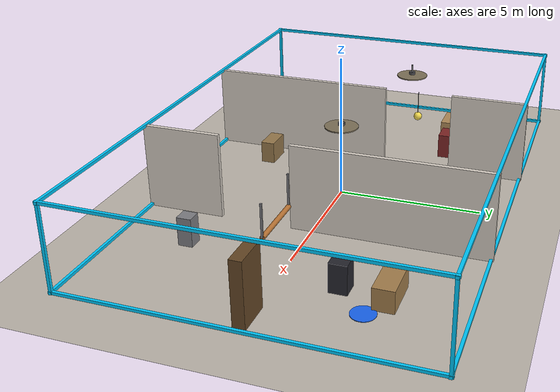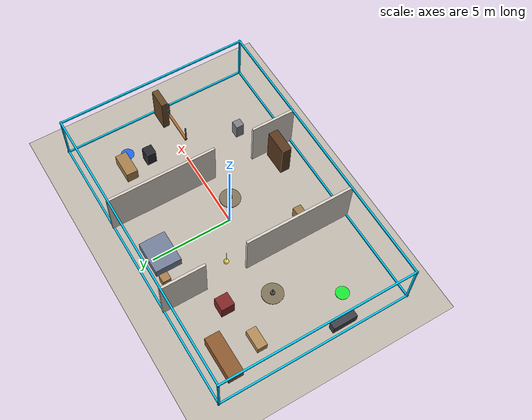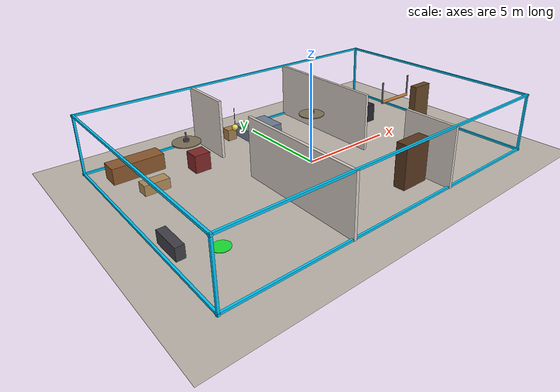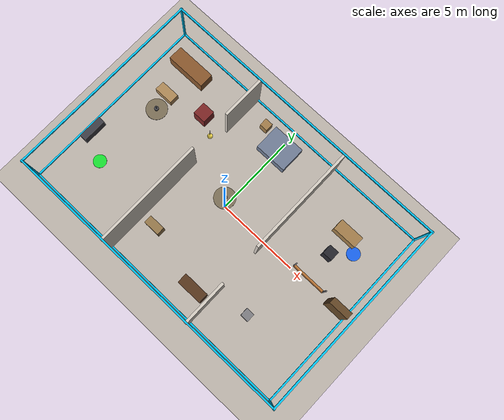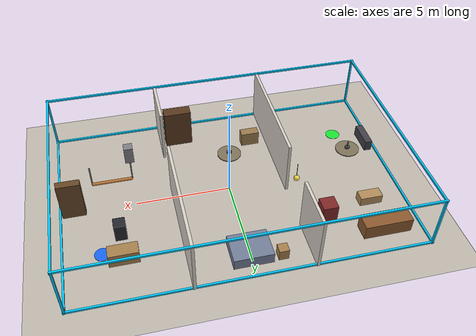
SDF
<?xml version="1.0" ?>
<sdf version="1.9">
  <world name="house_3room">
    <physics type="ode">
      <max_step_size>0.004</max_step_size>
      <real_time_factor>1.0</real_time_factor>
      <real_time_update_rate>250</real_time_update_rate>
    </physics>
    <plugin name="gz::sim::systems::Physics" filename="gz-sim-physics-system"/>
    <plugin name="gz::sim::systems::UserCommands" filename="gz-sim-user-commands-system"/>
    <plugin name="gz::sim::systems::SceneBroadcaster" filename="gz-sim-scene-broadcaster-system"/>
    <plugin name="gz::sim::systems::Contact" filename="gz-sim-contact-system"/>
    <plugin name="gz::sim::systems::Imu" filename="gz-sim-imu-system"/>
    <plugin name="gz::sim::systems::AirPressure" filename="gz-sim-air-pressure-system"/>
    <plugin name="gz::sim::systems::ApplyLinkWrench" filename="gz-sim-apply-link-wrench-system"/>
    <plugin name="gz::sim::systems::Sensors" filename="gz-sim-sensors-system">
      <render_engine>ogre2</render_engine>
    </plugin>
    <gui fullscreen="false"/>

    <!-- Sunlight -->
    <light type="directional" name="sun">
      <cast_shadows>true</cast_shadows>
      <pose>0 0 10 0 0 0</pose>
      <diffuse>0.8 0.8 0.8 1</diffuse>
      <specular>0.2 0.2 0.2 1</specular>
      <attenuation>
        <range>1000</range>
        <constant>0.9</constant>
        <linear>0.01</linear>
        <quadratic>0.001</quadratic>
      </attenuation>
      <direction>-0.5 0.1 -0.9</direction>
    </light>

    <!-- GROUND PLANE — 18m x 12m                                     -->
    <model name="ground_plane">
      <static>true</static>
      <pose>0 0 0 0 0 0</pose>
      <link name="link">
        <collision name="collision">
          <geometry><plane><normal>0 0 1</normal><size>18 12</size></plane></geometry>
          <surface>
            <friction><ode><mu>100</mu><mu2>50</mu2></ode></friction>
          </surface>
        </collision>
        <visual name="visual">
          <geometry><plane><normal>0 0 1</normal><size>18 12</size></plane></geometry>
          <material>
            <ambient>0.75 0.72 0.68 1</ambient>
            <diffuse>0.75 0.72 0.68 1</diffuse>
          </material>
        </visual>
      </link>
    </model>

    <!-- OUTER WALLS — Invisible collisions + cyan wireframe          -->
    <!-- House: 18m wide (X: -9 to +9) × 12m deep (Y: -6 to +6)     -->
    <model name="outer_walls">
      <static>true</static>
      <link name="walls_link">
        <!-- Solid invisible collision walls -->
        <collision name="c_north"><pose>0 6 1.5 0 0 0</pose><geometry><box><size>18 0.15 3</size></box></geometry></collision>
        <collision name="c_south"><pose>0 -6 1.5 0 0 0</pose><geometry><box><size>18 0.15 3</size></box></geometry></collision>
        <collision name="c_east"><pose>9 0 1.5 0 0 0</pose><geometry><box><size>0.15 12 3</size></box></geometry></collision>
        <collision name="c_west"><pose>-9 0 1.5 0 0 0</pose><geometry><box><size>0.15 12 3</size></box></geometry></collision>
        <collision name="c_ceiling"><pose>0 0 3 0 0 0</pose><geometry><box><size>18 12 0.1</size></box></geometry></collision>

        <!-- Cyan wireframe: 4 vertical corner pillars -->
        <visual name="vp_nw"><pose>-8.925 5.925 1.5 0 0 0</pose><geometry><box><size>0.1 0.1 3</size></box></geometry><material><ambient>0 0.8 1 1</ambient><diffuse>0 0.8 1 1</diffuse></material></visual>
        <visual name="vp_ne"><pose>8.925 5.925 1.5 0 0 0</pose><geometry><box><size>0.1 0.1 3</size></box></geometry><material><ambient>0 0.8 1 1</ambient><diffuse>0 0.8 1 1</diffuse></material></visual>
        <visual name="vp_sw"><pose>-8.925 -5.925 1.5 0 0 0</pose><geometry><box><size>0.1 0.1 3</size></box></geometry><material><ambient>0 0.8 1 1</ambient><diffuse>0 0.8 1 1</diffuse></material></visual>
        <visual name="vp_se"><pose>8.925 -5.925 1.5 0 0 0</pose><geometry><box><size>0.1 0.1 3</size></box></geometry><material><ambient>0 0.8 1 1</ambient><diffuse>0 0.8 1 1</diffuse></material></visual>

        <!-- Cyan wireframe: top edges -->
        <visual name="vt_n"><pose>0 5.925 3 0 0 0</pose><geometry><box><size>18 0.1 0.1</size></box></geometry><material><ambient>0 0.8 1 1</ambient><diffuse>0 0.8 1 1</diffuse></material></visual>
        <visual name="vt_s"><pose>0 -5.925 3 0 0 0</pose><geometry><box><size>18 0.1 0.1</size></box></geometry><material><ambient>0 0.8 1 1</ambient><diffuse>0 0.8 1 1</diffuse></material></visual>
        <visual name="vt_e"><pose>8.925 0 3 0 0 0</pose><geometry><box><size>0.1 12 0.1</size></box></geometry><material><ambient>0 0.8 1 1</ambient><diffuse>0 0.8 1 1</diffuse></material></visual>
        <visual name="vt_w"><pose>-8.925 0 3 0 0 0</pose><geometry><box><size>0.1 12 0.1</size></box></geometry><material><ambient>0 0.8 1 1</ambient><diffuse>0 0.8 1 1</diffuse></material></visual>

        <!-- Cyan wireframe: bottom edges -->
        <visual name="vb_n"><pose>0 5.925 0.05 0 0 0</pose><geometry><box><size>18 0.1 0.1</size></box></geometry><material><ambient>0 0.8 1 1</ambient><diffuse>0 0.8 1 1</diffuse></material></visual>
        <visual name="vb_s"><pose>0 -5.925 0.05 0 0 0</pose><geometry><box><size>18 0.1 0.1</size></box></geometry><material><ambient>0 0.8 1 1</ambient><diffuse>0 0.8 1 1</diffuse></material></visual>
        <visual name="vb_e"><pose>8.925 0 0.05 0 0 0</pose><geometry><box><size>0.1 12 0.1</size></box></geometry><material><ambient>0 0.8 1 1</ambient><diffuse>0 0.8 1 1</diffuse></material></visual>
        <visual name="vb_w"><pose>-8.925 0 0.05 0 0 0</pose><geometry><box><size>0.1 12 0.1</size></box></geometry><material><ambient>0 0.8 1 1</ambient><diffuse>0 0.8 1 1</diffuse></material></visual>
      </link>
    </model>

    <!-- INTERNAL WALLS — Dividing the 3 rooms with doorways          -->
    <!--  Wall 1 at X = -3: Living Room | Bedroom                    -->
    <!--    Door at Y = +2 (2.5m wide: Y = 0.75 to 3.25)             -->
    <!--  Wall 2 at X = +3: Bedroom     | Study                      -->
    <!--    Door at Y = -2 (2.5m wide: Y = -3.25 to -0.75)           -->

    <!-- Internal Wall 1 (X = -3) — Lower segment: Y = -6 to +0.75 -->
    <model name="iwall1_lower">
      <static>true</static>
      <link name="link">
        <pose>-3 -2.625 1.5 0 0 0</pose>
        <collision name="collision"><geometry><box><size>0.15 6.75 3</size></box></geometry></collision>
        <visual name="visual"><geometry><box><size>0.15 6.75 3</size></box></geometry>
          <material><ambient>0.85 0.82 0.78 1</ambient><diffuse>0.85 0.82 0.78 1</diffuse></material>
        </visual>
      </link>
    </model>

    <!-- Internal Wall 1 (X = -3) — Upper segment: Y = +3.25 to +6 -->
    <model name="iwall1_upper">
      <static>true</static>
      <link name="link">
        <pose>-3 4.625 1.5 0 0 0</pose>
        <collision name="collision"><geometry><box><size>0.15 2.75 3</size></box></geometry></collision>
        <visual name="visual"><geometry><box><size>0.15 2.75 3</size></box></geometry>
          <material><ambient>0.85 0.82 0.78 1</ambient><diffuse>0.85 0.82 0.78 1</diffuse></material>
        </visual>
      </link>
    </model>

    <!-- Internal Wall 2 (X = +3) — Lower segment: Y = -6 to -3.25 -->
    <model name="iwall2_lower">
      <static>true</static>
      <link name="link">
        <pose>3 -4.625 1.5 0 0 0</pose>
        <collision name="collision"><geometry><box><size>0.15 2.75 3</size></box></geometry></collision>
        <visual name="visual"><geometry><box><size>0.15 2.75 3</size></box></geometry>
          <material><ambient>0.85 0.82 0.78 1</ambient><diffuse>0.85 0.82 0.78 1</diffuse></material>
        </visual>
      </link>
    </model>

    <!-- Internal Wall 2 (X = +3) — Upper segment: Y = -0.75 to +6 -->
    <model name="iwall2_upper">
      <static>true</static>
      <link name="link">
        <pose>3 2.625 1.5 0 0 0</pose>
        <collision name="collision"><geometry><box><size>0.15 6.75 3</size></box></geometry></collision>
        <visual name="visual"><geometry><box><size>0.15 6.75 3</size></box></geometry>
          <material><ambient>0.85 0.82 0.78 1</ambient><diffuse>0.85 0.82 0.78 1</diffuse></material>
        </visual>
      </link>
    </model>

    <!-- No lintels above doorways — they would appear as obstacles
         in the 2D projected map and block navigation paths -->

    <!-- ROOM 1: LIVING ROOM (X: -9 to -3)                           -->

    <!-- Sofa — Large brown couch against north wall -->
    <model name="living_sofa">
      <static>true</static>
      <pose>-7 4.5 0.4 0 0 0</pose>
      <link name="link">
        <collision name="collision"><geometry><box><size>2.5 0.9 0.8</size></box></geometry></collision>
        <visual name="visual"><geometry><box><size>2.5 0.9 0.8</size></box></geometry>
          <material><ambient>0.55 0.35 0.18 1</ambient><diffuse>0.55 0.35 0.18 1</diffuse></material>
        </visual>
      </link>
    </model>

    <!-- Coffee Table — Low wooden table in front of sofa -->
    <model name="living_coffee_table">
      <static>true</static>
      <pose>-7 2.5 0.25 0 0 0</pose>
      <link name="link">
        <collision name="collision"><geometry><box><size>1.2 0.6 0.5</size></box></geometry></collision>
        <visual name="visual"><geometry><box><size>1.2 0.6 0.5</size></box></geometry>
          <material><ambient>0.7 0.55 0.35 1</ambient><diffuse>0.7 0.55 0.35 1</diffuse></material>
        </visual>
      </link>
    </model>

    <!-- TV Stand — Against west wall -->
    <model name="living_tv_stand">
      <static>true</static>
      <pose>-8.5 -2 0.3 0 0 0</pose>
      <link name="link">
        <collision name="collision"><geometry><box><size>0.4 1.5 0.6</size></box></geometry></collision>
        <visual name="visual"><geometry><box><size>0.4 1.5 0.6</size></box></geometry>
          <material><ambient>0.25 0.25 0.28 1</ambient><diffuse>0.25 0.25 0.28 1</diffuse></material>
        </visual>
      </link>
    </model>

    <!-- Armchair — Near the doorway -->
    <model name="living_armchair">
      <static>true</static>
      <pose>-4.5 3 0.45 0 0 0</pose>
      <link name="link">
        <collision name="collision"><geometry><box><size>0.8 0.8 0.9</size></box></geometry></collision>
        <visual name="visual"><geometry><box><size>0.8 0.8 0.9</size></box></geometry>
          <material><ambient>0.5 0.15 0.15 1</ambient><diffuse>0.5 0.15 0.15 1</diffuse></material>
        </visual>
      </link>
    </model>

    <!-- ROOM 2: BEDROOM (X: -3 to +3) — Drone spawns here at (0,0) -->

    <!-- Bed — Against north wall -->
    <model name="bedroom_bed">
      <static>true</static>
      <pose>0 4.5 0.3 0 0 0</pose>
      <link name="link">
        <collision name="collision"><geometry><box><size>2.0 1.6 0.6</size></box></geometry></collision>
        <visual name="visual"><geometry><box><size>2.0 1.6 0.6</size></box></geometry>
          <material><ambient>0.45 0.5 0.6 1</ambient><diffuse>0.45 0.5 0.6 1</diffuse></material>
        </visual>
      </link>
    </model>

    <!-- Nightstand — Next to bed -->
    <model name="bedroom_nightstand">
      <static>true</static>
      <pose>-1.5 5 0.3 0 0 0</pose>
      <link name="link">
        <collision name="collision"><geometry><box><size>0.5 0.5 0.6</size></box></geometry></collision>
        <visual name="visual"><geometry><box><size>0.5 0.5 0.6</size></box></geometry>
          <material><ambient>0.65 0.5 0.3 1</ambient><diffuse>0.65 0.5 0.3 1</diffuse></material>
        </visual>
      </link>
    </model>

    <!-- Wardrobe — Tall, against south wall -->
    <model name="bedroom_wardrobe">
      <static>true</static>
      <pose>2 -4.5 1.1 0 0 0</pose>
      <link name="link">
        <collision name="collision"><geometry><box><size>1.5 0.6 2.2</size></box></geometry></collision>
        <visual name="visual"><geometry><box><size>1.5 0.6 2.2</size></box></geometry>
          <material><ambient>0.35 0.22 0.12 1</ambient><diffuse>0.35 0.22 0.12 1</diffuse></material>
        </visual>
      </link>
    </model>

    <!-- Dresser — South side -->
    <model name="bedroom_dresser">
      <static>true</static>
      <pose>-2 -3.5 0.4 0 0 0</pose>
      <link name="link">
        <collision name="collision"><geometry><box><size>1.0 0.5 0.8</size></box></geometry></collision>
        <visual name="visual"><geometry><box><size>1.0 0.5 0.8</size></box></geometry>
          <material><ambient>0.6 0.48 0.3 1</ambient><diffuse>0.6 0.48 0.3 1</diffuse></material>
        </visual>
      </link>
    </model>

    <!-- ROOM 3: STUDY ROOM (X: +3 to +9)                            -->

    <!-- Desk — Work area -->
    <model name="study_desk">
      <static>true</static>
      <pose>6 3.5 0.375 0 0 0</pose>
      <link name="link">
        <collision name="collision"><geometry><box><size>1.5 0.7 0.75</size></box></geometry></collision>
        <visual name="visual"><geometry><box><size>1.5 0.7 0.75</size></box></geometry>
          <material><ambient>0.65 0.5 0.3 1</ambient><diffuse>0.65 0.5 0.3 1</diffuse></material>
        </visual>
      </link>
    </model>

    <!-- Office Chair -->
    <model name="study_chair">
      <static>true</static>
      <pose>6 2 0.5 0 0 0</pose>
      <link name="link">
        <collision name="collision"><geometry><box><size>0.6 0.6 1.0</size></box></geometry></collision>
        <visual name="visual"><geometry><box><size>0.6 0.6 1.0</size></box></geometry>
          <material><ambient>0.15 0.15 0.18 1</ambient><diffuse>0.15 0.15 0.18 1</diffuse></material>
        </visual>
      </link>
    </model>

    <!-- Bookshelf — Tall, against east wall -->
    <model name="study_bookshelf">
      <static>true</static>
      <pose>8.2 0 1.1 0 0 0</pose>
      <link name="link">
        <collision name="collision"><geometry><box><size>1.2 0.4 2.2</size></box></geometry></collision>
        <visual name="visual"><geometry><box><size>1.2 0.4 2.2</size></box></geometry>
          <material><ambient>0.4 0.28 0.15 1</ambient><diffuse>0.4 0.28 0.15 1</diffuse></material>
        </visual>
      </link>
    </model>

    <!-- Filing Cabinet -->
    <model name="study_cabinet">
      <static>true</static>
      <pose>5 -3.5 0.5 0 0 0</pose>
      <link name="link">
        <collision name="collision"><geometry><box><size>0.5 0.5 1.0</size></box></geometry></collision>
        <visual name="visual"><geometry><box><size>0.5 0.5 1.0</size></box></geometry>
          <material><ambient>0.5 0.5 0.52 1</ambient><diffuse>0.5 0.5 0.52 1</diffuse></material>
        </visual>
      </link>
    </model>

    <!-- CEILING OBSTACLES — Fans, lights, pipes (Phase 3)            -->
    <!-- These hang from the 3.0m ceiling into the drone flight zone  -->

    <!-- Ceiling Fan — Bedroom (center of room, directly above spawn) -->
    <!-- Fan hub at z=2.7, blades extend down to z=2.55              -->
    <!-- Above default 1.8m altitude but visible in OctoMap 3D       -->
    <model name="ceiling_fan_bedroom">
      <static>true</static>
      <link name="link">
        <!-- Center rod hanging from ceiling -->
        <collision name="rod_col"><pose>0 0 2.85 0 0 0</pose>
          <geometry><cylinder><radius>0.03</radius><length>0.3</length></cylinder></geometry>
        </collision>
        <visual name="rod_vis"><pose>0 0 2.85 0 0 0</pose>
          <geometry><cylinder><radius>0.03</radius><length>0.3</length></cylinder></geometry>
          <material><ambient>0.4 0.4 0.42 1</ambient><diffuse>0.4 0.4 0.42 1</diffuse></material>
        </visual>
        <!-- Fan motor hub -->
        <collision name="hub_col"><pose>0 0 2.65 0 0 0</pose>
          <geometry><cylinder><radius>0.12</radius><length>0.1</length></cylinder></geometry>
        </collision>
        <visual name="hub_vis"><pose>0 0 2.65 0 0 0</pose>
          <geometry><cylinder><radius>0.12</radius><length>0.1</length></cylinder></geometry>
          <material><ambient>0.3 0.3 0.32 1</ambient><diffuse>0.3 0.3 0.32 1</diffuse></material>
        </visual>
        <!-- Fan blades (flat disc representing 4 blades) -->
        <collision name="blades_col"><pose>0 0 2.55 0 0 0</pose>
          <geometry><cylinder><radius>0.6</radius><length>0.04</length></cylinder></geometry>
        </collision>
        <visual name="blades_vis"><pose>0 0 2.55 0 0 0</pose>
          <geometry><cylinder><radius>0.6</radius><length>0.04</length></cylinder></geometry>
          <material><ambient>0.5 0.45 0.35 1</ambient><diffuse>0.5 0.45 0.35 1</diffuse></material>
        </visual>
      </link>
    </model>

    <!-- Ceiling Fan — Living Room (above coffee table area) -->
    <!-- Placed at (-6, 1) — directly in the cross-room flight path -->
    <model name="ceiling_fan_living">
      <static>true</static>
      <link name="link">
        <collision name="rod_col"><pose>-6 1 2.85 0 0 0</pose>
          <geometry><cylinder><radius>0.03</radius><length>0.3</length></cylinder></geometry>
        </collision>
        <visual name="rod_vis"><pose>-6 1 2.85 0 0 0</pose>
          <geometry><cylinder><radius>0.03</radius><length>0.3</length></cylinder></geometry>
          <material><ambient>0.4 0.4 0.42 1</ambient><diffuse>0.4 0.4 0.42 1</diffuse></material>
        </visual>
        <collision name="hub_col"><pose>-6 1 2.65 0 0 0</pose>
          <geometry><cylinder><radius>0.12</radius><length>0.1</length></cylinder></geometry>
        </collision>
        <visual name="hub_vis"><pose>-6 1 2.65 0 0 0</pose>
          <geometry><cylinder><radius>0.12</radius><length>0.1</length></cylinder></geometry>
          <material><ambient>0.3 0.3 0.32 1</ambient><diffuse>0.3 0.3 0.32 1</diffuse></material>
        </visual>
        <collision name="blades_col"><pose>-6 1 2.55 0 0 0</pose>
          <geometry><cylinder><radius>0.6</radius><length>0.04</length></cylinder></geometry>
        </collision>
        <visual name="blades_vis"><pose>-6 1 2.55 0 0 0</pose>
          <geometry><cylinder><radius>0.6</radius><length>0.04</length></cylinder></geometry>
          <material><ambient>0.5 0.45 0.35 1</ambient><diffuse>0.5 0.45 0.35 1</diffuse></material>
        </visual>
      </link>
    </model>

    <!-- Hanging Pendant Light — Near Door 1 (Bedroom-Living Room doorway) -->
    <!-- Hangs LOW at z=2.05 — forces altitude awareness near doorways    -->
    <model name="hanging_light_door1">
      <static>true</static>
      <link name="link">
        <!-- Thin wire from ceiling -->
        <collision name="wire_col"><pose>-3 2 2.55 0 0 0</pose>
          <geometry><cylinder><radius>0.01</radius><length>0.9</length></cylinder></geometry>
        </collision>
        <visual name="wire_vis"><pose>-3 2 2.55 0 0 0</pose>
          <geometry><cylinder><radius>0.01</radius><length>0.9</length></cylinder></geometry>
          <material><ambient>0.2 0.2 0.2 1</ambient><diffuse>0.2 0.2 0.2 1</diffuse></material>
        </visual>
        <!-- Light fixture (sphere) -->
        <collision name="light_col"><pose>-3 2 2.05 0 0 0</pose>
          <geometry><sphere><radius>0.15</radius></sphere></geometry>
        </collision>
        <visual name="light_vis"><pose>-3 2 2.05 0 0 0</pose>
          <geometry><sphere><radius>0.15</radius></sphere></geometry>
          <material><ambient>0.95 0.85 0.3 1</ambient><diffuse>0.95 0.85 0.3 1</diffuse></material>
        </visual>
      </link>
    </model>

    <!-- Low Horizontal Pipe — Study Room                                -->
    <!-- At z=1.9m — EXACTLY at drone flight altitude!                   -->
    <!-- This is the CRITICAL TEST CASE: drone MUST change altitude      -->
    <!-- Runs East-West across the room at (6, 0)                        -->
    <model name="low_pipe_study">
      <static>true</static>
      <link name="link">
        <!-- Horizontal pipe (rotated 90° around Y to lay flat along X) -->
        <collision name="pipe_col"><pose>6 0 1.9 0 1.5708 0</pose>
          <geometry><cylinder><radius>0.08</radius><length>2.0</length></cylinder></geometry>
        </collision>
        <visual name="pipe_vis"><pose>6 0 1.9 0 1.5708 0</pose>
          <geometry><cylinder><radius>0.08</radius><length>2.0</length></cylinder></geometry>
          <material><ambient>0.72 0.45 0.2 1</ambient><diffuse>0.72 0.45 0.2 1</diffuse></material>
        </visual>
        <!-- Pipe brackets (2 mounting brackets on wall/ceiling) -->
        <collision name="bracket1_col"><pose>5 0 2.45 0 0 0</pose>
          <geometry><box><size>0.06 0.06 1.1</size></box></geometry>
        </collision>
        <visual name="bracket1_vis"><pose>5 0 2.45 0 0 0</pose>
          <geometry><box><size>0.06 0.06 1.1</size></box></geometry>
          <material><ambient>0.5 0.5 0.52 1</ambient><diffuse>0.5 0.5 0.52 1</diffuse></material>
        </visual>
        <collision name="bracket2_col"><pose>7 0 2.45 0 0 0</pose>
          <geometry><box><size>0.06 0.06 1.1</size></box></geometry>
        </collision>
        <visual name="bracket2_vis"><pose>7 0 2.45 0 0 0</pose>
          <geometry><box><size>0.06 0.06 1.1</size></box></geometry>
          <material><ambient>0.5 0.5 0.52 1</ambient><diffuse>0.5 0.5 0.52 1</diffuse></material>
        </visual>
      </link>
    </model>

    <!-- MARKERS — Start (green) and Destination (blue)               -->

    <!-- Start: Green disc in Living Room -->
    <model name="marker_start">
      <static>true</static>
      <pose>-7 -3 0.01 0 0 0</pose>
      <link name="link">
        <visual name="visual">
          <geometry><cylinder><radius>0.4</radius><length>0.02</length></cylinder></geometry>
          <material><ambient>0.1 0.9 0.2 1</ambient><diffuse>0.1 0.9 0.2 1</diffuse></material>
        </visual>
      </link>
    </model>

    <!-- Destination: Blue disc in Study Room -->
    <model name="marker_destination">
      <static>true</static>
      <pose>7 3 0.01 0 0 0</pose>
      <link name="link">
        <visual name="visual">
          <geometry><cylinder><radius>0.4</radius><length>0.02</length></cylinder></geometry>
          <material><ambient>0.1 0.4 0.95 1</ambient><diffuse>0.1 0.4 0.95 1</diffuse></material>
        </visual>
      </link>
    </model>

  </world>
</sdf>
